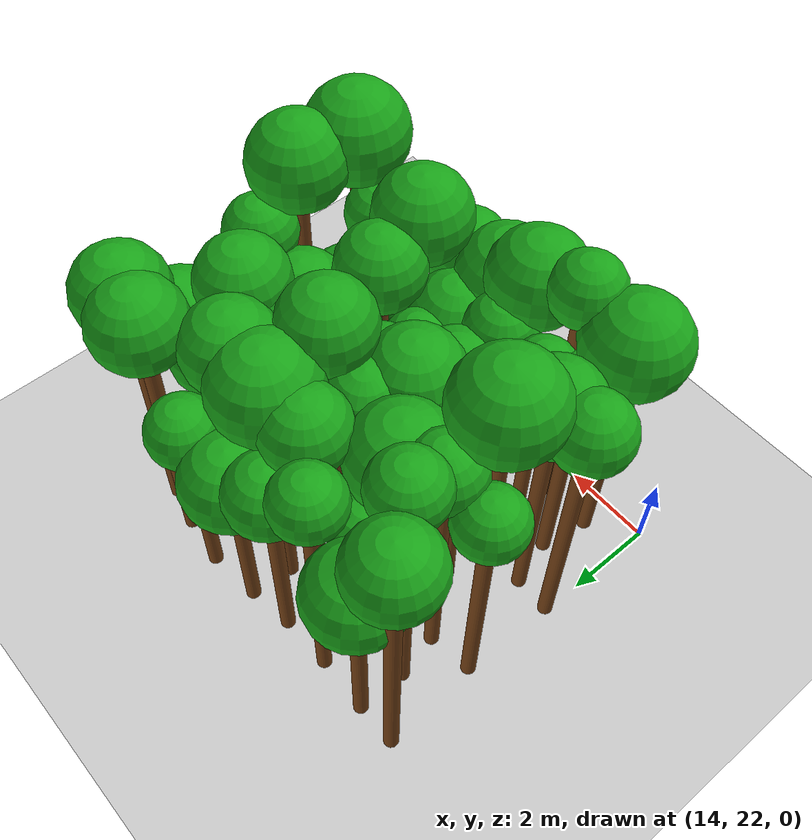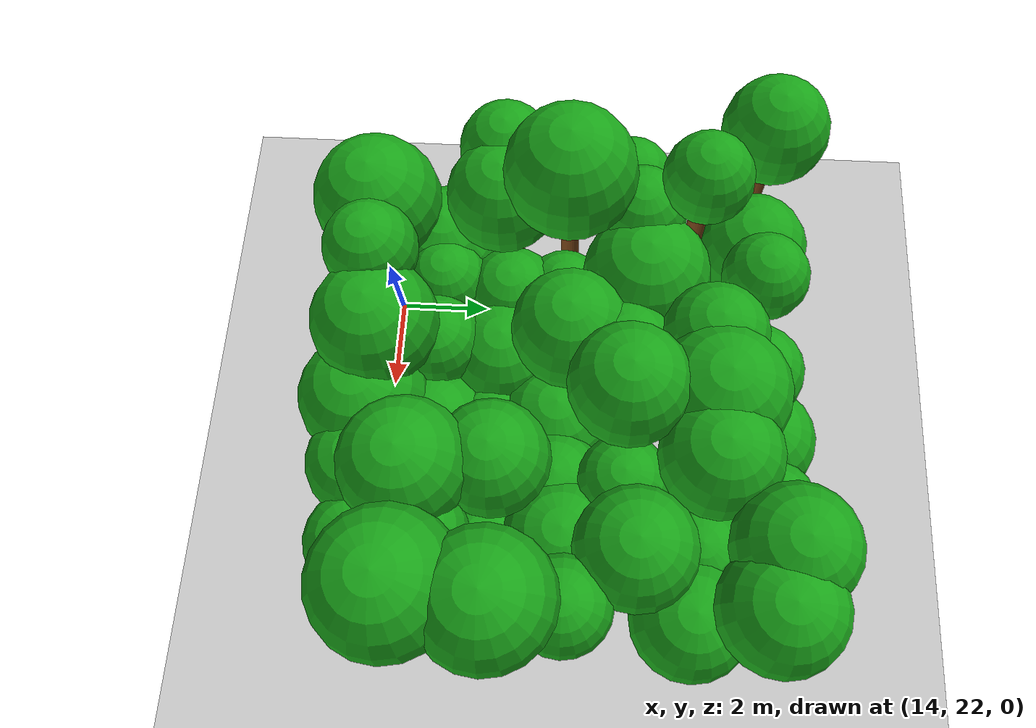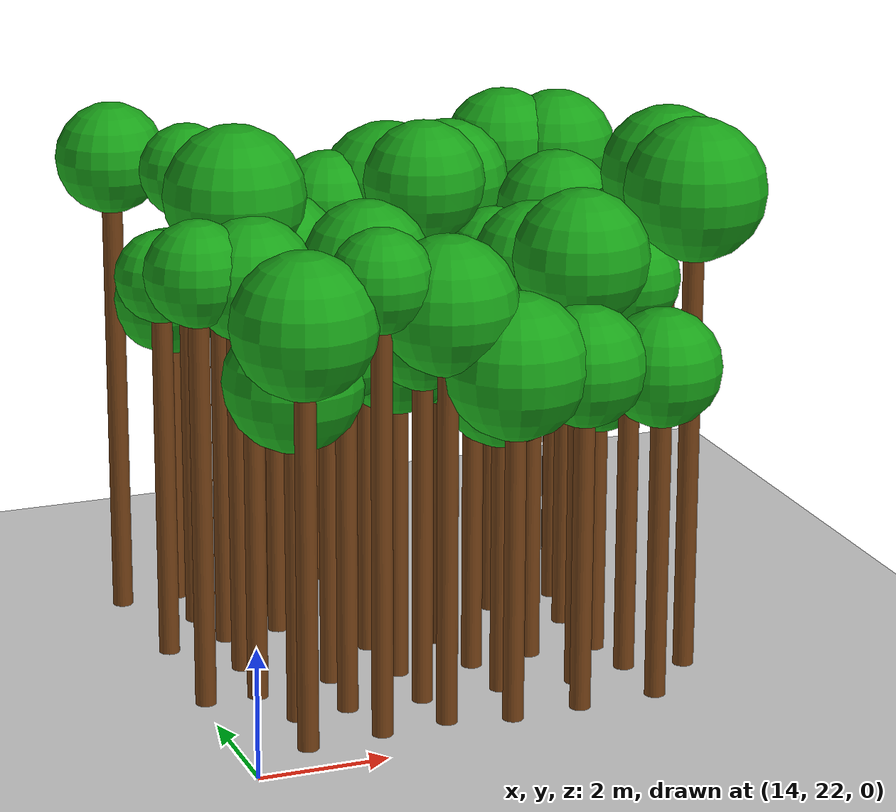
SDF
<sdf version="1.6">
 <world name="forest_world">
  <include><uri>model://sun</uri></include>
  <include><uri>model://ground_plane</uri></include>
  <model name="tree_2227_trunk">
   <static>true</static>
   <pose>14.10 24.88 3.14 0 0 0</pose>
   <link name="link">
    <collision name="collision">
     <geometry><cylinder><radius>0.16</radius><length>6.29</length></cylinder></geometry>
    </collision>
    <visual name="visual">
     <geometry><cylinder><radius>0.16</radius><length>6.29</length></cylinder></geometry>
     <material><ambient>0.35 0.20 0.05 1</ambient><diffuse>0.45 0.25 0.08 1</diffuse></material>
    </visual>
   </link>
  </model>
  <model name="tree_2227_leaf">
   <static>true</static>
   <pose>14.10 24.88 6.77 0 0 0</pose>
   <link name="link">
    <collision name="collision"><geometry><sphere><radius>0.80</radius></sphere></geometry></collision>
    <visual name="visual">
     <geometry><sphere><radius>0.80</radius></sphere></geometry>
     <material><ambient>0.05 0.45 0.05 1</ambient><diffuse>0.10 0.65 0.10 1</diffuse></material>
    </visual>
   </link>
  </model>
  <model name="tree_2229_trunk">
   <static>true</static>
   <pose>14.17 27.05 2.85 0 0 0</pose>
   <link name="link">
    <collision name="collision">
     <geometry><cylinder><radius>0.16</radius><length>5.71</length></cylinder></geometry>
    </collision>
    <visual name="visual">
     <geometry><cylinder><radius>0.16</radius><length>5.71</length></cylinder></geometry>
     <material><ambient>0.35 0.20 0.05 1</ambient><diffuse>0.45 0.25 0.08 1</diffuse></material>
    </visual>
   </link>
  </model>
  <model name="tree_2229_leaf">
   <static>true</static>
   <pose>14.17 27.05 6.13 0 0 0</pose>
   <link name="link">
    <collision name="collision"><geometry><sphere><radius>0.71</radius></sphere></geometry></collision>
    <visual name="visual">
     <geometry><sphere><radius>0.71</radius></sphere></geometry>
     <material><ambient>0.05 0.45 0.05 1</ambient><diffuse>0.10 0.65 0.10 1</diffuse></material>
    </visual>
   </link>
  </model>
  <model name="tree_2231_trunk">
   <static>true</static>
   <pose>14.04 29.26 3.48 0 0 0</pose>
   <link name="link">
    <collision name="collision">
     <geometry><cylinder><radius>0.16</radius><length>6.96</length></cylinder></geometry>
    </collision>
    <visual name="visual">
     <geometry><cylinder><radius>0.16</radius><length>6.96</length></cylinder></geometry>
     <material><ambient>0.35 0.20 0.05 1</ambient><diffuse>0.45 0.25 0.08 1</diffuse></material>
    </visual>
   </link>
  </model>
  <model name="tree_2231_leaf">
   <static>true</static>
   <pose>14.04 29.26 7.48 0 0 0</pose>
   <link name="link">
    <collision name="collision"><geometry><sphere><radius>0.87</radius></sphere></geometry></collision>
    <visual name="visual">
     <geometry><sphere><radius>0.87</radius></sphere></geometry>
     <material><ambient>0.05 0.45 0.05 1</ambient><diffuse>0.10 0.65 0.10 1</diffuse></material>
    </visual>
   </link>
  </model>
  <model name="tree_2280_trunk">
   <static>true</static>
   <pose>15.01 22.74 2.92 0 0 0</pose>
   <link name="link">
    <collision name="collision">
     <geometry><cylinder><radius>0.16</radius><length>5.84</length></cylinder></geometry>
    </collision>
    <visual name="visual">
     <geometry><cylinder><radius>0.16</radius><length>5.84</length></cylinder></geometry>
     <material><ambient>0.35 0.20 0.05 1</ambient><diffuse>0.45 0.25 0.08 1</diffuse></material>
    </visual>
   </link>
  </model>
  <model name="tree_2280_leaf">
   <static>true</static>
   <pose>15.01 22.74 6.49 0 0 0</pose>
   <link name="link">
    <collision name="collision"><geometry><sphere><radius>1.08</radius></sphere></geometry></collision>
    <visual name="visual">
     <geometry><sphere><radius>1.08</radius></sphere></geometry>
     <material><ambient>0.05 0.45 0.05 1</ambient><diffuse>0.10 0.65 0.10 1</diffuse></material>
    </visual>
   </link>
  </model>
  <model name="tree_2281_trunk">
   <static>true</static>
   <pose>15.21 23.83 2.34 0 0 0</pose>
   <link name="link">
    <collision name="collision">
     <geometry><cylinder><radius>0.16</radius><length>4.68</length></cylinder></geometry>
    </collision>
    <visual name="visual">
     <geometry><cylinder><radius>0.16</radius><length>4.68</length></cylinder></geometry>
     <material><ambient>0.35 0.20 0.05 1</ambient><diffuse>0.45 0.25 0.08 1</diffuse></material>
    </visual>
   </link>
  </model>
  <model name="tree_2281_leaf">
   <static>true</static>
   <pose>15.21 23.83 5.32 0 0 0</pose>
   <link name="link">
    <collision name="collision"><geometry><sphere><radius>1.06</radius></sphere></geometry></collision>
    <visual name="visual">
     <geometry><sphere><radius>1.06</radius></sphere></geometry>
     <material><ambient>0.05 0.45 0.05 1</ambient><diffuse>0.10 0.65 0.10 1</diffuse></material>
    </visual>
   </link>
  </model>
  <model name="tree_2282_trunk">
   <static>true</static>
   <pose>14.92 24.86 3.01 0 0 0</pose>
   <link name="link">
    <collision name="collision">
     <geometry><cylinder><radius>0.16</radius><length>6.03</length></cylinder></geometry>
    </collision>
    <visual name="visual">
     <geometry><cylinder><radius>0.16</radius><length>6.03</length></cylinder></geometry>
     <material><ambient>0.35 0.20 0.05 1</ambient><diffuse>0.45 0.25 0.08 1</diffuse></material>
    </visual>
   </link>
  </model>
  <model name="tree_2282_leaf">
   <static>true</static>
   <pose>14.92 24.86 6.60 0 0 0</pose>
   <link name="link">
    <collision name="collision"><geometry><sphere><radius>0.95</radius></sphere></geometry></collision>
    <visual name="visual">
     <geometry><sphere><radius>0.95</radius></sphere></geometry>
     <material><ambient>0.05 0.45 0.05 1</ambient><diffuse>0.10 0.65 0.10 1</diffuse></material>
    </visual>
   </link>
  </model>
  <model name="tree_2283_trunk">
   <static>true</static>
   <pose>15.03 26.00 3.46 0 0 0</pose>
   <link name="link">
    <collision name="collision">
     <geometry><cylinder><radius>0.16</radius><length>6.92</length></cylinder></geometry>
    </collision>
    <visual name="visual">
     <geometry><cylinder><radius>0.16</radius><length>6.92</length></cylinder></geometry>
     <material><ambient>0.35 0.20 0.05 1</ambient><diffuse>0.45 0.25 0.08 1</diffuse></material>
    </visual>
   </link>
  </model>
  <model name="tree_2283_leaf">
   <static>true</static>
   <pose>15.03 26.00 7.57 0 0 0</pose>
   <link name="link">
    <collision name="collision"><geometry><sphere><radius>1.08</radius></sphere></geometry></collision>
    <visual name="visual">
     <geometry><sphere><radius>1.08</radius></sphere></geometry>
     <material><ambient>0.05 0.45 0.05 1</ambient><diffuse>0.10 0.65 0.10 1</diffuse></material>
    </visual>
   </link>
  </model>
  <model name="tree_2284_trunk">
   <static>true</static>
   <pose>15.15 27.20 3.11 0 0 0</pose>
   <link name="link">
    <collision name="collision">
     <geometry><cylinder><radius>0.16</radius><length>6.21</length></cylinder></geometry>
    </collision>
    <visual name="visual">
     <geometry><cylinder><radius>0.16</radius><length>6.21</length></cylinder></geometry>
     <material><ambient>0.35 0.20 0.05 1</ambient><diffuse>0.45 0.25 0.08 1</diffuse></material>
    </visual>
   </link>
  </model>
  <model name="tree_2284_leaf">
   <static>true</static>
   <pose>15.15 27.20 6.67 0 0 0</pose>
   <link name="link">
    <collision name="collision"><geometry><sphere><radius>0.76</radius></sphere></geometry></collision>
    <visual name="visual">
     <geometry><sphere><radius>0.76</radius></sphere></geometry>
     <material><ambient>0.05 0.45 0.05 1</ambient><diffuse>0.10 0.65 0.10 1</diffuse></material>
    </visual>
   </link>
  </model>
  <model name="tree_2285_trunk">
   <static>true</static>
   <pose>14.95 28.19 3.50 0 0 0</pose>
   <link name="link">
    <collision name="collision">
     <geometry><cylinder><radius>0.16</radius><length>7.00</length></cylinder></geometry>
    </collision>
    <visual name="visual">
     <geometry><cylinder><radius>0.16</radius><length>7.00</length></cylinder></geometry>
     <material><ambient>0.35 0.20 0.05 1</ambient><diffuse>0.45 0.25 0.08 1</diffuse></material>
    </visual>
   </link>
  </model>
  <model name="tree_2285_leaf">
   <static>true</static>
   <pose>14.95 28.19 7.44 0 0 0</pose>
   <link name="link">
    <collision name="collision"><geometry><sphere><radius>0.74</radius></sphere></geometry></collision>
    <visual name="visual">
     <geometry><sphere><radius>0.74</radius></sphere></geometry>
     <material><ambient>0.05 0.45 0.05 1</ambient><diffuse>0.10 0.65 0.10 1</diffuse></material>
    </visual>
   </link>
  </model>
  <model name="tree_2286_trunk">
   <static>true</static>
   <pose>14.96 29.28 2.31 0 0 0</pose>
   <link name="link">
    <collision name="collision">
     <geometry><cylinder><radius>0.16</radius><length>4.61</length></cylinder></geometry>
    </collision>
    <visual name="visual">
     <geometry><cylinder><radius>0.16</radius><length>4.61</length></cylinder></geometry>
     <material><ambient>0.35 0.20 0.05 1</ambient><diffuse>0.45 0.25 0.08 1</diffuse></material>
    </visual>
   </link>
  </model>
  <model name="tree_2286_leaf">
   <static>true</static>
   <pose>14.96 29.28 5.21 0 0 0</pose>
   <link name="link">
    <collision name="collision"><geometry><sphere><radius>1.00</radius></sphere></geometry></collision>
    <visual name="visual">
     <geometry><sphere><radius>1.00</radius></sphere></geometry>
     <material><ambient>0.05 0.45 0.05 1</ambient><diffuse>0.10 0.65 0.10 1</diffuse></material>
    </visual>
   </link>
  </model>
  <model name="tree_2335_trunk">
   <static>true</static>
   <pose>16.21 22.85 3.27 0 0 0</pose>
   <link name="link">
    <collision name="collision">
     <geometry><cylinder><radius>0.16</radius><length>6.54</length></cylinder></geometry>
    </collision>
    <visual name="visual">
     <geometry><cylinder><radius>0.16</radius><length>6.54</length></cylinder></geometry>
     <material><ambient>0.35 0.20 0.05 1</ambient><diffuse>0.45 0.25 0.08 1</diffuse></material>
    </visual>
   </link>
  </model>
  <model name="tree_2335_leaf">
   <static>true</static>
   <pose>16.21 22.85 7.00 0 0 0</pose>
   <link name="link">
    <collision name="collision"><geometry><sphere><radius>0.77</radius></sphere></geometry></collision>
    <visual name="visual">
     <geometry><sphere><radius>0.77</radius></sphere></geometry>
     <material><ambient>0.05 0.45 0.05 1</ambient><diffuse>0.10 0.65 0.10 1</diffuse></material>
    </visual>
   </link>
  </model>
  <model name="tree_2336_trunk">
   <static>true</static>
   <pose>16.04 23.92 2.61 0 0 0</pose>
   <link name="link">
    <collision name="collision">
     <geometry><cylinder><radius>0.16</radius><length>5.23</length></cylinder></geometry>
    </collision>
    <visual name="visual">
     <geometry><cylinder><radius>0.16</radius><length>5.23</length></cylinder></geometry>
     <material><ambient>0.35 0.20 0.05 1</ambient><diffuse>0.45 0.25 0.08 1</diffuse></material>
    </visual>
   </link>
  </model>
  <model name="tree_2336_leaf">
   <static>true</static>
   <pose>16.04 23.92 5.65 0 0 0</pose>
   <link name="link">
    <collision name="collision"><geometry><sphere><radius>0.71</radius></sphere></geometry></collision>
    <visual name="visual">
     <geometry><sphere><radius>0.71</radius></sphere></geometry>
     <material><ambient>0.05 0.45 0.05 1</ambient><diffuse>0.10 0.65 0.10 1</diffuse></material>
    </visual>
   </link>
  </model>
  <model name="tree_2337_trunk">
   <static>true</static>
   <pose>16.16 25.05 2.48 0 0 0</pose>
   <link name="link">
    <collision name="collision">
     <geometry><cylinder><radius>0.16</radius><length>4.95</length></cylinder></geometry>
    </collision>
    <visual name="visual">
     <geometry><cylinder><radius>0.16</radius><length>4.95</length></cylinder></geometry>
     <material><ambient>0.35 0.20 0.05 1</ambient><diffuse>0.45 0.25 0.08 1</diffuse></material>
    </visual>
   </link>
  </model>
  <model name="tree_2337_leaf">
   <static>true</static>
   <pose>16.16 25.05 5.44 0 0 0</pose>
   <link name="link">
    <collision name="collision"><geometry><sphere><radius>0.81</radius></sphere></geometry></collision>
    <visual name="visual">
     <geometry><sphere><radius>0.81</radius></sphere></geometry>
     <material><ambient>0.05 0.45 0.05 1</ambient><diffuse>0.10 0.65 0.10 1</diffuse></material>
    </visual>
   </link>
  </model>
  <model name="tree_2338_trunk">
   <static>true</static>
   <pose>16.06 25.95 2.48 0 0 0</pose>
   <link name="link">
    <collision name="collision">
     <geometry><cylinder><radius>0.16</radius><length>4.95</length></cylinder></geometry>
    </collision>
    <visual name="visual">
     <geometry><cylinder><radius>0.16</radius><length>4.95</length></cylinder></geometry>
     <material><ambient>0.35 0.20 0.05 1</ambient><diffuse>0.45 0.25 0.08 1</diffuse></material>
    </visual>
   </link>
  </model>
  <model name="tree_2338_leaf">
   <static>true</static>
   <pose>16.06 25.95 5.39 0 0 0</pose>
   <link name="link">
    <collision name="collision"><geometry><sphere><radius>0.73</radius></sphere></geometry></collision>
    <visual name="visual">
     <geometry><sphere><radius>0.73</radius></sphere></geometry>
     <material><ambient>0.05 0.45 0.05 1</ambient><diffuse>0.10 0.65 0.10 1</diffuse></material>
    </visual>
   </link>
  </model>
  <model name="tree_2339_trunk">
   <static>true</static>
   <pose>16.06 27.33 2.76 0 0 0</pose>
   <link name="link">
    <collision name="collision">
     <geometry><cylinder><radius>0.16</radius><length>5.51</length></cylinder></geometry>
    </collision>
    <visual name="visual">
     <geometry><cylinder><radius>0.16</radius><length>5.51</length></cylinder></geometry>
     <material><ambient>0.35 0.20 0.05 1</ambient><diffuse>0.45 0.25 0.08 1</diffuse></material>
    </visual>
   </link>
  </model>
  <model name="tree_2339_leaf">
   <static>true</static>
   <pose>16.06 27.33 6.16 0 0 0</pose>
   <link name="link">
    <collision name="collision"><geometry><sphere><radius>1.08</radius></sphere></geometry></collision>
    <visual name="visual">
     <geometry><sphere><radius>1.08</radius></sphere></geometry>
     <material><ambient>0.05 0.45 0.05 1</ambient><diffuse>0.10 0.65 0.10 1</diffuse></material>
    </visual>
   </link>
  </model>
  <model name="tree_2340_trunk">
   <static>true</static>
   <pose>16.08 28.17 2.10 0 0 0</pose>
   <link name="link">
    <collision name="collision">
     <geometry><cylinder><radius>0.16</radius><length>4.21</length></cylinder></geometry>
    </collision>
    <visual name="visual">
     <geometry><cylinder><radius>0.16</radius><length>4.21</length></cylinder></geometry>
     <material><ambient>0.35 0.20 0.05 1</ambient><diffuse>0.45 0.25 0.08 1</diffuse></material>
    </visual>
   </link>
  </model>
  <model name="tree_2340_leaf">
   <static>true</static>
   <pose>16.08 28.17 4.66 0 0 0</pose>
   <link name="link">
    <collision name="collision"><geometry><sphere><radius>0.74</radius></sphere></geometry></collision>
    <visual name="visual">
     <geometry><sphere><radius>0.74</radius></sphere></geometry>
     <material><ambient>0.05 0.45 0.05 1</ambient><diffuse>0.10 0.65 0.10 1</diffuse></material>
    </visual>
   </link>
  </model>
  <model name="tree_2341_trunk">
   <static>true</static>
   <pose>16.20 29.24 3.06 0 0 0</pose>
   <link name="link">
    <collision name="collision">
     <geometry><cylinder><radius>0.16</radius><length>6.12</length></cylinder></geometry>
    </collision>
    <visual name="visual">
     <geometry><cylinder><radius>0.16</radius><length>6.12</length></cylinder></geometry>
     <material><ambient>0.35 0.20 0.05 1</ambient><diffuse>0.45 0.25 0.08 1</diffuse></material>
    </visual>
   </link>
  </model>
  <model name="tree_2341_leaf">
   <static>true</static>
   <pose>16.20 29.24 6.56 0 0 0</pose>
   <link name="link">
    <collision name="collision"><geometry><sphere><radius>0.72</radius></sphere></geometry></collision>
    <visual name="visual">
     <geometry><sphere><radius>0.72</radius></sphere></geometry>
     <material><ambient>0.05 0.45 0.05 1</ambient><diffuse>0.10 0.65 0.10 1</diffuse></material>
    </visual>
   </link>
  </model>
  <model name="tree_2390_trunk">
   <static>true</static>
   <pose>17.27 22.95 2.94 0 0 0</pose>
   <link name="link">
    <collision name="collision">
     <geometry><cylinder><radius>0.16</radius><length>5.88</length></cylinder></geometry>
    </collision>
    <visual name="visual">
     <geometry><cylinder><radius>0.16</radius><length>5.88</length></cylinder></geometry>
     <material><ambient>0.35 0.20 0.05 1</ambient><diffuse>0.45 0.25 0.08 1</diffuse></material>
    </visual>
   </link>
  </model>
  <model name="tree_2390_leaf">
   <static>true</static>
   <pose>17.27 22.95 6.50 0 0 0</pose>
   <link name="link">
    <collision name="collision"><geometry><sphere><radius>1.04</radius></sphere></geometry></collision>
    <visual name="visual">
     <geometry><sphere><radius>1.04</radius></sphere></geometry>
     <material><ambient>0.05 0.45 0.05 1</ambient><diffuse>0.10 0.65 0.10 1</diffuse></material>
    </visual>
   </link>
  </model>
  <model name="tree_2391_trunk">
   <static>true</static>
   <pose>17.22 23.86 2.63 0 0 0</pose>
   <link name="link">
    <collision name="collision">
     <geometry><cylinder><radius>0.16</radius><length>5.27</length></cylinder></geometry>
    </collision>
    <visual name="visual">
     <geometry><cylinder><radius>0.16</radius><length>5.27</length></cylinder></geometry>
     <material><ambient>0.35 0.20 0.05 1</ambient><diffuse>0.45 0.25 0.08 1</diffuse></material>
    </visual>
   </link>
  </model>
  <model name="tree_2391_leaf">
   <static>true</static>
   <pose>17.22 23.86 5.73 0 0 0</pose>
   <link name="link">
    <collision name="collision"><geometry><sphere><radius>0.76</radius></sphere></geometry></collision>
    <visual name="visual">
     <geometry><sphere><radius>0.76</radius></sphere></geometry>
     <material><ambient>0.05 0.45 0.05 1</ambient><diffuse>0.10 0.65 0.10 1</diffuse></material>
    </visual>
   </link>
  </model>
  <model name="tree_2392_trunk">
   <static>true</static>
   <pose>17.23 24.96 2.33 0 0 0</pose>
   <link name="link">
    <collision name="collision">
     <geometry><cylinder><radius>0.16</radius><length>4.66</length></cylinder></geometry>
    </collision>
    <visual name="visual">
     <geometry><cylinder><radius>0.16</radius><length>4.66</length></cylinder></geometry>
     <material><ambient>0.35 0.20 0.05 1</ambient><diffuse>0.45 0.25 0.08 1</diffuse></material>
    </visual>
   </link>
  </model>
  <model name="tree_2392_leaf">
   <static>true</static>
   <pose>17.23 24.96 5.24 0 0 0</pose>
   <link name="link">
    <collision name="collision"><geometry><sphere><radius>0.96</radius></sphere></geometry></collision>
    <visual name="visual">
     <geometry><sphere><radius>0.96</radius></sphere></geometry>
     <material><ambient>0.05 0.45 0.05 1</ambient><diffuse>0.10 0.65 0.10 1</diffuse></material>
    </visual>
   </link>
  </model>
  <model name="tree_2393_trunk">
   <static>true</static>
   <pose>17.15 26.11 2.85 0 0 0</pose>
   <link name="link">
    <collision name="collision">
     <geometry><cylinder><radius>0.16</radius><length>5.69</length></cylinder></geometry>
    </collision>
    <visual name="visual">
     <geometry><cylinder><radius>0.16</radius><length>5.69</length></cylinder></geometry>
     <material><ambient>0.35 0.20 0.05 1</ambient><diffuse>0.45 0.25 0.08 1</diffuse></material>
    </visual>
   </link>
  </model>
  <model name="tree_2393_leaf">
   <static>true</static>
   <pose>17.15 26.11 6.29 0 0 0</pose>
   <link name="link">
    <collision name="collision"><geometry><sphere><radius>0.99</radius></sphere></geometry></collision>
    <visual name="visual">
     <geometry><sphere><radius>0.99</radius></sphere></geometry>
     <material><ambient>0.05 0.45 0.05 1</ambient><diffuse>0.10 0.65 0.10 1</diffuse></material>
    </visual>
   </link>
  </model>
  <model name="tree_2394_trunk">
   <static>true</static>
   <pose>17.41 27.02 2.85 0 0 0</pose>
   <link name="link">
    <collision name="collision">
     <geometry><cylinder><radius>0.16</radius><length>5.70</length></cylinder></geometry>
    </collision>
    <visual name="visual">
     <geometry><cylinder><radius>0.16</radius><length>5.70</length></cylinder></geometry>
     <material><ambient>0.35 0.20 0.05 1</ambient><diffuse>0.45 0.25 0.08 1</diffuse></material>
    </visual>
   </link>
  </model>
  <model name="tree_2394_leaf">
   <static>true</static>
   <pose>17.41 27.02 6.18 0 0 0</pose>
   <link name="link">
    <collision name="collision"><geometry><sphere><radius>0.81</radius></sphere></geometry></collision>
    <visual name="visual">
     <geometry><sphere><radius>0.81</radius></sphere></geometry>
     <material><ambient>0.05 0.45 0.05 1</ambient><diffuse>0.10 0.65 0.10 1</diffuse></material>
    </visual>
   </link>
  </model>
  <model name="tree_2395_trunk">
   <static>true</static>
   <pose>17.32 28.41 3.05 0 0 0</pose>
   <link name="link">
    <collision name="collision">
     <geometry><cylinder><radius>0.16</radius><length>6.10</length></cylinder></geometry>
    </collision>
    <visual name="visual">
     <geometry><cylinder><radius>0.16</radius><length>6.10</length></cylinder></geometry>
     <material><ambient>0.35 0.20 0.05 1</ambient><diffuse>0.45 0.25 0.08 1</diffuse></material>
    </visual>
   </link>
  </model>
  <model name="tree_2395_leaf">
   <static>true</static>
   <pose>17.32 28.41 6.62 0 0 0</pose>
   <link name="link">
    <collision name="collision"><geometry><sphere><radius>0.87</radius></sphere></geometry></collision>
    <visual name="visual">
     <geometry><sphere><radius>0.87</radius></sphere></geometry>
     <material><ambient>0.05 0.45 0.05 1</ambient><diffuse>0.10 0.65 0.10 1</diffuse></material>
    </visual>
   </link>
  </model>
  <model name="tree_2396_trunk">
   <static>true</static>
   <pose>17.39 29.28 2.40 0 0 0</pose>
   <link name="link">
    <collision name="collision">
     <geometry><cylinder><radius>0.16</radius><length>4.79</length></cylinder></geometry>
    </collision>
    <visual name="visual">
     <geometry><cylinder><radius>0.16</radius><length>4.79</length></cylinder></geometry>
     <material><ambient>0.35 0.20 0.05 1</ambient><diffuse>0.45 0.25 0.08 1</diffuse></material>
    </visual>
   </link>
  </model>
  <model name="tree_2396_leaf">
   <static>true</static>
   <pose>17.39 29.28 5.30 0 0 0</pose>
   <link name="link">
    <collision name="collision"><geometry><sphere><radius>0.85</radius></sphere></geometry></collision>
    <visual name="visual">
     <geometry><sphere><radius>0.85</radius></sphere></geometry>
     <material><ambient>0.05 0.45 0.05 1</ambient><diffuse>0.10 0.65 0.10 1</diffuse></material>
    </visual>
   </link>
  </model>
  <model name="tree_2445_trunk">
   <static>true</static>
   <pose>18.24 22.71 2.45 0 0 0</pose>
   <link name="link">
    <collision name="collision">
     <geometry><cylinder><radius>0.16</radius><length>4.89</length></cylinder></geometry>
    </collision>
    <visual name="visual">
     <geometry><cylinder><radius>0.16</radius><length>4.89</length></cylinder></geometry>
     <material><ambient>0.35 0.20 0.05 1</ambient><diffuse>0.45 0.25 0.08 1</diffuse></material>
    </visual>
   </link>
  </model>
  <model name="tree_2445_leaf">
   <static>true</static>
   <pose>18.24 22.71 5.55 0 0 0</pose>
   <link name="link">
    <collision name="collision"><geometry><sphere><radius>1.10</radius></sphere></geometry></collision>
    <visual name="visual">
     <geometry><sphere><radius>1.10</radius></sphere></geometry>
     <material><ambient>0.05 0.45 0.05 1</ambient><diffuse>0.10 0.65 0.10 1</diffuse></material>
    </visual>
   </link>
  </model>
  <model name="tree_2446_trunk">
   <static>true</static>
   <pose>18.48 23.84 2.18 0 0 0</pose>
   <link name="link">
    <collision name="collision">
     <geometry><cylinder><radius>0.16</radius><length>4.35</length></cylinder></geometry>
    </collision>
    <visual name="visual">
     <geometry><cylinder><radius>0.16</radius><length>4.35</length></cylinder></geometry>
     <material><ambient>0.35 0.20 0.05 1</ambient><diffuse>0.45 0.25 0.08 1</diffuse></material>
    </visual>
   </link>
  </model>
  <model name="tree_2446_leaf">
   <static>true</static>
   <pose>18.48 23.84 4.94 0 0 0</pose>
   <link name="link">
    <collision name="collision"><geometry><sphere><radius>0.98</radius></sphere></geometry></collision>
    <visual name="visual">
     <geometry><sphere><radius>0.98</radius></sphere></geometry>
     <material><ambient>0.05 0.45 0.05 1</ambient><diffuse>0.10 0.65 0.10 1</diffuse></material>
    </visual>
   </link>
  </model>
  <model name="tree_2447_trunk">
   <static>true</static>
   <pose>18.42 24.88 2.25 0 0 0</pose>
   <link name="link">
    <collision name="collision">
     <geometry><cylinder><radius>0.16</radius><length>4.51</length></cylinder></geometry>
    </collision>
    <visual name="visual">
     <geometry><cylinder><radius>0.16</radius><length>4.51</length></cylinder></geometry>
     <material><ambient>0.35 0.20 0.05 1</ambient><diffuse>0.45 0.25 0.08 1</diffuse></material>
    </visual>
   </link>
  </model>
  <model name="tree_2447_leaf">
   <static>true</static>
   <pose>18.42 24.88 4.95 0 0 0</pose>
   <link name="link">
    <collision name="collision"><geometry><sphere><radius>0.74</radius></sphere></geometry></collision>
    <visual name="visual">
     <geometry><sphere><radius>0.74</radius></sphere></geometry>
     <material><ambient>0.05 0.45 0.05 1</ambient><diffuse>0.10 0.65 0.10 1</diffuse></material>
    </visual>
   </link>
  </model>
  <model name="tree_2448_trunk">
   <static>true</static>
   <pose>18.32 25.94 2.21 0 0 0</pose>
   <link name="link">
    <collision name="collision">
     <geometry><cylinder><radius>0.16</radius><length>4.42</length></cylinder></geometry>
    </collision>
    <visual name="visual">
     <geometry><cylinder><radius>0.16</radius><length>4.42</length></cylinder></geometry>
     <material><ambient>0.35 0.20 0.05 1</ambient><diffuse>0.45 0.25 0.08 1</diffuse></material>
    </visual>
   </link>
  </model>
  <model name="tree_2448_leaf">
   <static>true</static>
   <pose>18.32 25.94 5.02 0 0 0</pose>
   <link name="link">
    <collision name="collision"><geometry><sphere><radius>1.01</radius></sphere></geometry></collision>
    <visual name="visual">
     <geometry><sphere><radius>1.01</radius></sphere></geometry>
     <material><ambient>0.05 0.45 0.05 1</ambient><diffuse>0.10 0.65 0.10 1</diffuse></material>
    </visual>
   </link>
  </model>
  <model name="tree_2449_trunk">
   <static>true</static>
   <pose>18.43 27.03 3.34 0 0 0</pose>
   <link name="link">
    <collision name="collision">
     <geometry><cylinder><radius>0.16</radius><length>6.68</length></cylinder></geometry>
    </collision>
    <visual name="visual">
     <geometry><cylinder><radius>0.16</radius><length>6.68</length></cylinder></geometry>
     <material><ambient>0.35 0.20 0.05 1</ambient><diffuse>0.45 0.25 0.08 1</diffuse></material>
    </visual>
   </link>
  </model>
  <model name="tree_2449_leaf">
   <static>true</static>
   <pose>18.43 27.03 7.25 0 0 0</pose>
   <link name="link">
    <collision name="collision"><geometry><sphere><radius>0.95</radius></sphere></geometry></collision>
    <visual name="visual">
     <geometry><sphere><radius>0.95</radius></sphere></geometry>
     <material><ambient>0.05 0.45 0.05 1</ambient><diffuse>0.10 0.65 0.10 1</diffuse></material>
    </visual>
   </link>
  </model>
  <model name="tree_2450_trunk">
   <static>true</static>
   <pose>18.34 28.47 3.06 0 0 0</pose>
   <link name="link">
    <collision name="collision">
     <geometry><cylinder><radius>0.16</radius><length>6.12</length></cylinder></geometry>
    </collision>
    <visual name="visual">
     <geometry><cylinder><radius>0.16</radius><length>6.12</length></cylinder></geometry>
     <material><ambient>0.35 0.20 0.05 1</ambient><diffuse>0.45 0.25 0.08 1</diffuse></material>
    </visual>
   </link>
  </model>
  <model name="tree_2450_leaf">
   <static>true</static>
   <pose>18.34 28.47 6.77 0 0 0</pose>
   <link name="link">
    <collision name="collision"><geometry><sphere><radius>1.09</radius></sphere></geometry></collision>
    <visual name="visual">
     <geometry><sphere><radius>1.09</radius></sphere></geometry>
     <material><ambient>0.05 0.45 0.05 1</ambient><diffuse>0.10 0.65 0.10 1</diffuse></material>
    </visual>
   </link>
  </model>
  <model name="tree_2451_trunk">
   <static>true</static>
   <pose>18.42 29.43 2.01 0 0 0</pose>
   <link name="link">
    <collision name="collision">
     <geometry><cylinder><radius>0.16</radius><length>4.03</length></cylinder></geometry>
    </collision>
    <visual name="visual">
     <geometry><cylinder><radius>0.16</radius><length>4.03</length></cylinder></geometry>
     <material><ambient>0.35 0.20 0.05 1</ambient><diffuse>0.45 0.25 0.08 1</diffuse></material>
    </visual>
   </link>
  </model>
  <model name="tree_2451_leaf">
   <static>true</static>
   <pose>18.42 29.43 4.63 0 0 0</pose>
   <link name="link">
    <collision name="collision"><geometry><sphere><radius>1.01</radius></sphere></geometry></collision>
    <visual name="visual">
     <geometry><sphere><radius>1.01</radius></sphere></geometry>
     <material><ambient>0.05 0.45 0.05 1</ambient><diffuse>0.10 0.65 0.10 1</diffuse></material>
    </visual>
   </link>
  </model>
  <model name="tree_2500_trunk">
   <static>true</static>
   <pose>19.35 22.76 2.44 0 0 0</pose>
   <link name="link">
    <collision name="collision">
     <geometry><cylinder><radius>0.16</radius><length>4.87</length></cylinder></geometry>
    </collision>
    <visual name="visual">
     <geometry><cylinder><radius>0.16</radius><length>4.87</length></cylinder></geometry>
     <material><ambient>0.35 0.20 0.05 1</ambient><diffuse>0.45 0.25 0.08 1</diffuse></material>
    </visual>
   </link>
  </model>
  <model name="tree_2500_leaf">
   <static>true</static>
   <pose>19.35 22.76 5.42 0 0 0</pose>
   <link name="link">
    <collision name="collision"><geometry><sphere><radius>0.92</radius></sphere></geometry></collision>
    <visual name="visual">
     <geometry><sphere><radius>0.92</radius></sphere></geometry>
     <material><ambient>0.05 0.45 0.05 1</ambient><diffuse>0.10 0.65 0.10 1</diffuse></material>
    </visual>
   </link>
  </model>
  <model name="tree_2501_trunk">
   <static>true</static>
   <pose>19.67 23.72 3.08 0 0 0</pose>
   <link name="link">
    <collision name="collision">
     <geometry><cylinder><radius>0.16</radius><length>6.16</length></cylinder></geometry>
    </collision>
    <visual name="visual">
     <geometry><cylinder><radius>0.16</radius><length>6.16</length></cylinder></geometry>
     <material><ambient>0.35 0.20 0.05 1</ambient><diffuse>0.45 0.25 0.08 1</diffuse></material>
    </visual>
   </link>
  </model>
  <model name="tree_2501_leaf">
   <static>true</static>
   <pose>19.67 23.72 6.78 0 0 0</pose>
   <link name="link">
    <collision name="collision"><geometry><sphere><radius>1.03</radius></sphere></geometry></collision>
    <visual name="visual">
     <geometry><sphere><radius>1.03</radius></sphere></geometry>
     <material><ambient>0.05 0.45 0.05 1</ambient><diffuse>0.10 0.65 0.10 1</diffuse></material>
    </visual>
   </link>
  </model>
  <model name="tree_2502_trunk">
   <static>true</static>
   <pose>19.43 24.98 2.92 0 0 0</pose>
   <link name="link">
    <collision name="collision">
     <geometry><cylinder><radius>0.16</radius><length>5.84</length></cylinder></geometry>
    </collision>
    <visual name="visual">
     <geometry><cylinder><radius>0.16</radius><length>5.84</length></cylinder></geometry>
     <material><ambient>0.35 0.20 0.05 1</ambient><diffuse>0.45 0.25 0.08 1</diffuse></material>
    </visual>
   </link>
  </model>
  <model name="tree_2502_leaf">
   <static>true</static>
   <pose>19.43 24.98 6.40 0 0 0</pose>
   <link name="link">
    <collision name="collision"><geometry><sphere><radius>0.93</radius></sphere></geometry></collision>
    <visual name="visual">
     <geometry><sphere><radius>0.93</radius></sphere></geometry>
     <material><ambient>0.05 0.45 0.05 1</ambient><diffuse>0.10 0.65 0.10 1</diffuse></material>
    </visual>
   </link>
  </model>
  <model name="tree_2503_trunk">
   <static>true</static>
   <pose>19.51 25.95 2.41 0 0 0</pose>
   <link name="link">
    <collision name="collision">
     <geometry><cylinder><radius>0.16</radius><length>4.83</length></cylinder></geometry>
    </collision>
    <visual name="visual">
     <geometry><cylinder><radius>0.16</radius><length>4.83</length></cylinder></geometry>
     <material><ambient>0.35 0.20 0.05 1</ambient><diffuse>0.45 0.25 0.08 1</diffuse></material>
    </visual>
   </link>
  </model>
  <model name="tree_2503_leaf">
   <static>true</static>
   <pose>19.51 25.95 5.34 0 0 0</pose>
   <link name="link">
    <collision name="collision"><geometry><sphere><radius>0.85</radius></sphere></geometry></collision>
    <visual name="visual">
     <geometry><sphere><radius>0.85</radius></sphere></geometry>
     <material><ambient>0.05 0.45 0.05 1</ambient><diffuse>0.10 0.65 0.10 1</diffuse></material>
    </visual>
   </link>
  </model>
  <model name="tree_2504_trunk">
   <static>true</static>
   <pose>19.59 27.04 2.75 0 0 0</pose>
   <link name="link">
    <collision name="collision">
     <geometry><cylinder><radius>0.16</radius><length>5.51</length></cylinder></geometry>
    </collision>
    <visual name="visual">
     <geometry><cylinder><radius>0.16</radius><length>5.51</length></cylinder></geometry>
     <material><ambient>0.35 0.20 0.05 1</ambient><diffuse>0.45 0.25 0.08 1</diffuse></material>
    </visual>
   </link>
  </model>
  <model name="tree_2504_leaf">
   <static>true</static>
   <pose>19.59 27.04 5.96 0 0 0</pose>
   <link name="link">
    <collision name="collision"><geometry><sphere><radius>0.75</radius></sphere></geometry></collision>
    <visual name="visual">
     <geometry><sphere><radius>0.75</radius></sphere></geometry>
     <material><ambient>0.05 0.45 0.05 1</ambient><diffuse>0.10 0.65 0.10 1</diffuse></material>
    </visual>
   </link>
  </model>
  <model name="tree_2505_trunk">
   <static>true</static>
   <pose>19.37 28.44 3.14 0 0 0</pose>
   <link name="link">
    <collision name="collision">
     <geometry><cylinder><radius>0.16</radius><length>6.29</length></cylinder></geometry>
    </collision>
    <visual name="visual">
     <geometry><cylinder><radius>0.16</radius><length>6.29</length></cylinder></geometry>
     <material><ambient>0.35 0.20 0.05 1</ambient><diffuse>0.45 0.25 0.08 1</diffuse></material>
    </visual>
   </link>
  </model>
  <model name="tree_2505_leaf">
   <static>true</static>
   <pose>19.37 28.44 6.86 0 0 0</pose>
   <link name="link">
    <collision name="collision"><geometry><sphere><radius>0.96</radius></sphere></geometry></collision>
    <visual name="visual">
     <geometry><sphere><radius>0.96</radius></sphere></geometry>
     <material><ambient>0.05 0.45 0.05 1</ambient><diffuse>0.10 0.65 0.10 1</diffuse></material>
    </visual>
   </link>
  </model>
  <model name="tree_2506_trunk">
   <static>true</static>
   <pose>19.63 29.57 2.27 0 0 0</pose>
   <link name="link">
    <collision name="collision">
     <geometry><cylinder><radius>0.16</radius><length>4.55</length></cylinder></geometry>
    </collision>
    <visual name="visual">
     <geometry><cylinder><radius>0.16</radius><length>4.55</length></cylinder></geometry>
     <material><ambient>0.35 0.20 0.05 1</ambient><diffuse>0.45 0.25 0.08 1</diffuse></material>
    </visual>
   </link>
  </model>
  <model name="tree_2506_leaf">
   <static>true</static>
   <pose>19.63 29.57 5.00 0 0 0</pose>
   <link name="link">
    <collision name="collision"><geometry><sphere><radius>0.76</radius></sphere></geometry></collision>
    <visual name="visual">
     <geometry><sphere><radius>0.76</radius></sphere></geometry>
     <material><ambient>0.05 0.45 0.05 1</ambient><diffuse>0.10 0.65 0.10 1</diffuse></material>
    </visual>
   </link>
  </model>
  <model name="tree_2555_trunk">
   <static>true</static>
   <pose>20.62 22.83 2.35 0 0 0</pose>
   <link name="link">
    <collision name="collision">
     <geometry><cylinder><radius>0.16</radius><length>4.70</length></cylinder></geometry>
    </collision>
    <visual name="visual">
     <geometry><cylinder><radius>0.16</radius><length>4.70</length></cylinder></geometry>
     <material><ambient>0.35 0.20 0.05 1</ambient><diffuse>0.45 0.25 0.08 1</diffuse></material>
    </visual>
   </link>
  </model>
  <model name="tree_2555_leaf">
   <static>true</static>
   <pose>20.62 22.83 5.23 0 0 0</pose>
   <link name="link">
    <collision name="collision"><geometry><sphere><radius>0.90</radius></sphere></geometry></collision>
    <visual name="visual">
     <geometry><sphere><radius>0.90</radius></sphere></geometry>
     <material><ambient>0.05 0.45 0.05 1</ambient><diffuse>0.10 0.65 0.10 1</diffuse></material>
    </visual>
   </link>
  </model>
  <model name="tree_2556_trunk">
   <static>true</static>
   <pose>20.61 23.98 2.92 0 0 0</pose>
   <link name="link">
    <collision name="collision">
     <geometry><cylinder><radius>0.16</radius><length>5.83</length></cylinder></geometry>
    </collision>
    <visual name="visual">
     <geometry><cylinder><radius>0.16</radius><length>5.83</length></cylinder></geometry>
     <material><ambient>0.35 0.20 0.05 1</ambient><diffuse>0.45 0.25 0.08 1</diffuse></material>
    </visual>
   </link>
  </model>
  <model name="tree_2556_leaf">
   <static>true</static>
   <pose>20.61 23.98 6.28 0 0 0</pose>
   <link name="link">
    <collision name="collision"><geometry><sphere><radius>0.74</radius></sphere></geometry></collision>
    <visual name="visual">
     <geometry><sphere><radius>0.74</radius></sphere></geometry>
     <material><ambient>0.05 0.45 0.05 1</ambient><diffuse>0.10 0.65 0.10 1</diffuse></material>
    </visual>
   </link>
  </model>
  <model name="tree_2557_trunk">
   <static>true</static>
   <pose>20.49 24.88 2.03 0 0 0</pose>
   <link name="link">
    <collision name="collision">
     <geometry><cylinder><radius>0.16</radius><length>4.05</length></cylinder></geometry>
    </collision>
    <visual name="visual">
     <geometry><cylinder><radius>0.16</radius><length>4.05</length></cylinder></geometry>
     <material><ambient>0.35 0.20 0.05 1</ambient><diffuse>0.45 0.25 0.08 1</diffuse></material>
    </visual>
   </link>
  </model>
  <model name="tree_2557_leaf">
   <static>true</static>
   <pose>20.49 24.88 4.67 0 0 0</pose>
   <link name="link">
    <collision name="collision"><geometry><sphere><radius>1.03</radius></sphere></geometry></collision>
    <visual name="visual">
     <geometry><sphere><radius>1.03</radius></sphere></geometry>
     <material><ambient>0.05 0.45 0.05 1</ambient><diffuse>0.10 0.65 0.10 1</diffuse></material>
    </visual>
   </link>
  </model>
  <model name="tree_2558_trunk">
   <static>true</static>
   <pose>20.46 26.11 2.47 0 0 0</pose>
   <link name="link">
    <collision name="collision">
     <geometry><cylinder><radius>0.16</radius><length>4.95</length></cylinder></geometry>
    </collision>
    <visual name="visual">
     <geometry><cylinder><radius>0.16</radius><length>4.95</length></cylinder></geometry>
     <material><ambient>0.35 0.20 0.05 1</ambient><diffuse>0.45 0.25 0.08 1</diffuse></material>
    </visual>
   </link>
  </model>
  <model name="tree_2558_leaf">
   <static>true</static>
   <pose>20.46 26.11 5.53 0 0 0</pose>
   <link name="link">
    <collision name="collision"><geometry><sphere><radius>0.97</radius></sphere></geometry></collision>
    <visual name="visual">
     <geometry><sphere><radius>0.97</radius></sphere></geometry>
     <material><ambient>0.05 0.45 0.05 1</ambient><diffuse>0.10 0.65 0.10 1</diffuse></material>
    </visual>
   </link>
  </model>
  <model name="tree_2559_trunk">
   <static>true</static>
   <pose>20.74 27.22 2.97 0 0 0</pose>
   <link name="link">
    <collision name="collision">
     <geometry><cylinder><radius>0.16</radius><length>5.94</length></cylinder></geometry>
    </collision>
    <visual name="visual">
     <geometry><cylinder><radius>0.16</radius><length>5.94</length></cylinder></geometry>
     <material><ambient>0.35 0.20 0.05 1</ambient><diffuse>0.45 0.25 0.08 1</diffuse></material>
    </visual>
   </link>
  </model>
  <model name="tree_2559_leaf">
   <static>true</static>
   <pose>20.74 27.22 6.52 0 0 0</pose>
   <link name="link">
    <collision name="collision"><geometry><sphere><radius>0.96</radius></sphere></geometry></collision>
    <visual name="visual">
     <geometry><sphere><radius>0.96</radius></sphere></geometry>
     <material><ambient>0.05 0.45 0.05 1</ambient><diffuse>0.10 0.65 0.10 1</diffuse></material>
    </visual>
   </link>
  </model>
  <model name="tree_2560_trunk">
   <static>true</static>
   <pose>20.53 28.29 2.43 0 0 0</pose>
   <link name="link">
    <collision name="collision">
     <geometry><cylinder><radius>0.16</radius><length>4.86</length></cylinder></geometry>
    </collision>
    <visual name="visual">
     <geometry><cylinder><radius>0.16</radius><length>4.86</length></cylinder></geometry>
     <material><ambient>0.35 0.20 0.05 1</ambient><diffuse>0.45 0.25 0.08 1</diffuse></material>
    </visual>
   </link>
  </model>
  <model name="tree_2560_leaf">
   <static>true</static>
   <pose>20.53 28.29 5.34 0 0 0</pose>
   <link name="link">
    <collision name="collision"><geometry><sphere><radius>0.80</radius></sphere></geometry></collision>
    <visual name="visual">
     <geometry><sphere><radius>0.80</radius></sphere></geometry>
     <material><ambient>0.05 0.45 0.05 1</ambient><diffuse>0.10 0.65 0.10 1</diffuse></material>
    </visual>
   </link>
  </model>
  <model name="tree_2561_trunk">
   <static>true</static>
   <pose>20.71 29.45 3.23 0 0 0</pose>
   <link name="link">
    <collision name="collision">
     <geometry><cylinder><radius>0.16</radius><length>6.46</length></cylinder></geometry>
    </collision>
    <visual name="visual">
     <geometry><cylinder><radius>0.16</radius><length>6.46</length></cylinder></geometry>
     <material><ambient>0.35 0.20 0.05 1</ambient><diffuse>0.45 0.25 0.08 1</diffuse></material>
    </visual>
   </link>
  </model>
  <model name="tree_2561_leaf">
   <static>true</static>
   <pose>20.71 29.45 7.04 0 0 0</pose>
   <link name="link">
    <collision name="collision"><geometry><sphere><radius>0.96</radius></sphere></geometry></collision>
    <visual name="visual">
     <geometry><sphere><radius>0.96</radius></sphere></geometry>
     <material><ambient>0.05 0.45 0.05 1</ambient><diffuse>0.10 0.65 0.10 1</diffuse></material>
    </visual>
   </link>
  </model>
  <model name="tree_2611_trunk">
   <static>true</static>
   <pose>21.54 23.80 3.48 0 0 0</pose>
   <link name="link">
    <collision name="collision">
     <geometry><cylinder><radius>0.16</radius><length>6.96</length></cylinder></geometry>
    </collision>
    <visual name="visual">
     <geometry><cylinder><radius>0.16</radius><length>6.96</length></cylinder></geometry>
     <material><ambient>0.35 0.20 0.05 1</ambient><diffuse>0.45 0.25 0.08 1</diffuse></material>
    </visual>
   </link>
  </model>
  <model name="tree_2611_leaf">
   <static>true</static>
   <pose>21.54 23.80 7.62 0 0 0</pose>
   <link name="link">
    <collision name="collision"><geometry><sphere><radius>1.09</radius></sphere></geometry></collision>
    <visual name="visual">
     <geometry><sphere><radius>1.09</radius></sphere></geometry>
     <material><ambient>0.05 0.45 0.05 1</ambient><diffuse>0.10 0.65 0.10 1</diffuse></material>
    </visual>
   </link>
  </model>
  <model name="tree_2612_trunk">
   <static>true</static>
   <pose>21.69 25.13 3.47 0 0 0</pose>
   <link name="link">
    <collision name="collision">
     <geometry><cylinder><radius>0.16</radius><length>6.95</length></cylinder></geometry>
    </collision>
    <visual name="visual">
     <geometry><cylinder><radius>0.16</radius><length>6.95</length></cylinder></geometry>
     <material><ambient>0.35 0.20 0.05 1</ambient><diffuse>0.45 0.25 0.08 1</diffuse></material>
    </visual>
   </link>
  </model>
  <model name="tree_2612_leaf">
   <static>true</static>
   <pose>21.69 25.13 7.56 0 0 0</pose>
   <link name="link">
    <collision name="collision"><geometry><sphere><radius>1.03</radius></sphere></geometry></collision>
    <visual name="visual">
     <geometry><sphere><radius>1.03</radius></sphere></geometry>
     <material><ambient>0.05 0.45 0.05 1</ambient><diffuse>0.10 0.65 0.10 1</diffuse></material>
    </visual>
   </link>
  </model>
  <model name="tree_2613_trunk">
   <static>true</static>
   <pose>21.61 26.17 3.00 0 0 0</pose>
   <link name="link">
    <collision name="collision">
     <geometry><cylinder><radius>0.16</radius><length>6.00</length></cylinder></geometry>
    </collision>
    <visual name="visual">
     <geometry><cylinder><radius>0.16</radius><length>6.00</length></cylinder></geometry>
     <material><ambient>0.35 0.20 0.05 1</ambient><diffuse>0.45 0.25 0.08 1</diffuse></material>
    </visual>
   </link>
  </model>
  <model name="tree_2613_leaf">
   <static>true</static>
   <pose>21.61 26.17 6.46 0 0 0</pose>
   <link name="link">
    <collision name="collision"><geometry><sphere><radius>0.77</radius></sphere></geometry></collision>
    <visual name="visual">
     <geometry><sphere><radius>0.77</radius></sphere></geometry>
     <material><ambient>0.05 0.45 0.05 1</ambient><diffuse>0.10 0.65 0.10 1</diffuse></material>
    </visual>
   </link>
  </model>
  <model name="tree_2615_trunk">
   <static>true</static>
   <pose>21.62 28.16 2.45 0 0 0</pose>
   <link name="link">
    <collision name="collision">
     <geometry><cylinder><radius>0.16</radius><length>4.90</length></cylinder></geometry>
    </collision>
    <visual name="visual">
     <geometry><cylinder><radius>0.16</radius><length>4.90</length></cylinder></geometry>
     <material><ambient>0.35 0.20 0.05 1</ambient><diffuse>0.45 0.25 0.08 1</diffuse></material>
    </visual>
   </link>
  </model>
  <model name="tree_2615_leaf">
   <static>true</static>
   <pose>21.62 28.16 5.48 0 0 0</pose>
   <link name="link">
    <collision name="collision"><geometry><sphere><radius>0.97</radius></sphere></geometry></collision>
    <visual name="visual">
     <geometry><sphere><radius>0.97</radius></sphere></geometry>
     <material><ambient>0.05 0.45 0.05 1</ambient><diffuse>0.10 0.65 0.10 1</diffuse></material>
    </visual>
   </link>
  </model>
  <model name="tree_2616_trunk">
   <static>true</static>
   <pose>21.58 29.24 3.21 0 0 0</pose>
   <link name="link">
    <collision name="collision">
     <geometry><cylinder><radius>0.16</radius><length>6.41</length></cylinder></geometry>
    </collision>
    <visual name="visual">
     <geometry><cylinder><radius>0.16</radius><length>6.41</length></cylinder></geometry>
     <material><ambient>0.35 0.20 0.05 1</ambient><diffuse>0.45 0.25 0.08 1</diffuse></material>
    </visual>
   </link>
  </model>
  <model name="tree_2616_leaf">
   <static>true</static>
   <pose>21.58 29.24 6.99 0 0 0</pose>
   <link name="link">
    <collision name="collision"><geometry><sphere><radius>0.96</radius></sphere></geometry></collision>
    <visual name="visual">
     <geometry><sphere><radius>0.96</radius></sphere></geometry>
     <material><ambient>0.05 0.45 0.05 1</ambient><diffuse>0.10 0.65 0.10 1</diffuse></material>
    </visual>
   </link>
  </model>
 </world>
</sdf>
